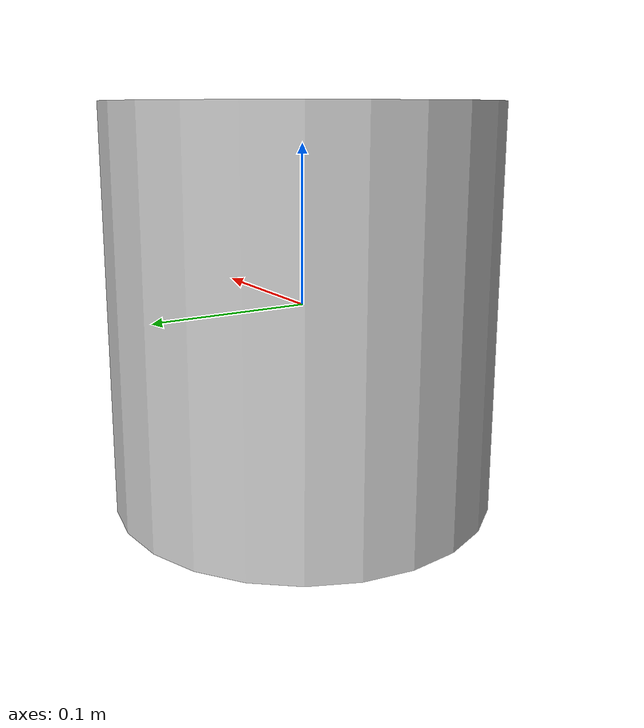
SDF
<?xml version='1.0'?>
<sdf version='1.6'>
    <model name="obstacle_2">
      <link name="link">
        <collision name="collision">
          <geometry>
            <cylinder>
              <radius>0.12</radius>
              <length>0.25</length>
            </cylinder>
          </geometry>
        </collision>

        <visual name="visual">
          <geometry>
            <cylinder>
              <radius>0.12</radius>
              <length>0.25</length>
            </cylinder>
          </geometry>
        </visual>
      </link>
    </model>
</sdf>
